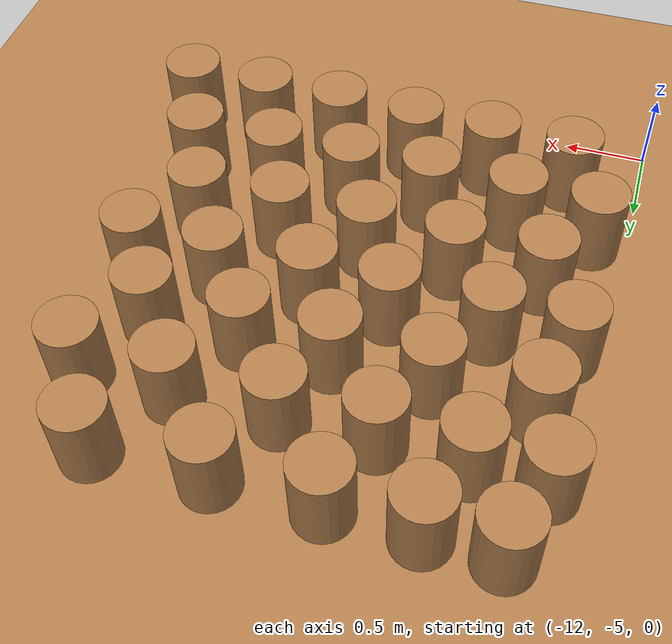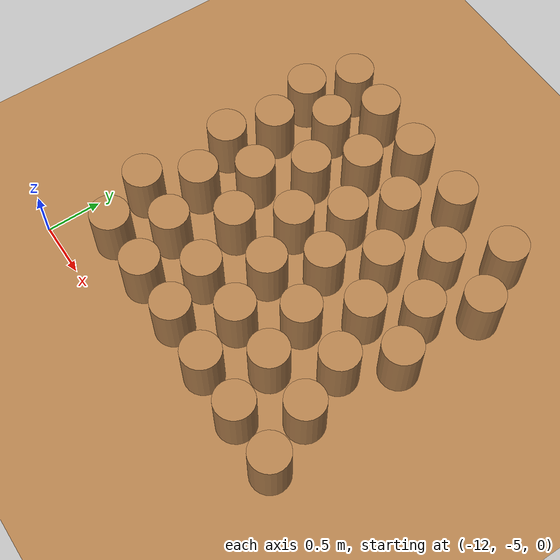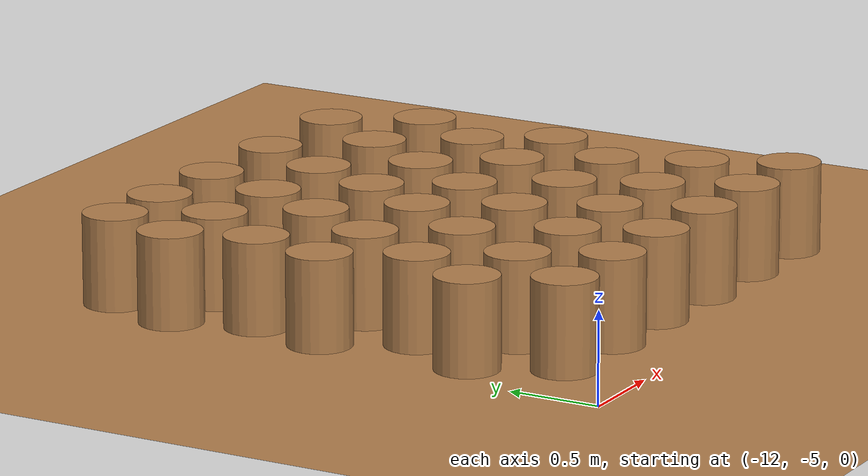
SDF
<sdf version="1.6">
 <world name="default">
  <model name="ground_plane">
   <pose>1.25 -2.75 0 0 -0 0</pose>
   <static>1</static>
   <link name="link">
    <collision name="collision">
     <geometry><plane><normal>0 0 1</normal><size>100 100</size></plane></geometry>
     <surface><friction><ode><mu>100</mu><mu2>50</mu2></ode></friction></surface>
    </collision>
    <visual name="visual">
     <cast_shadows>0</cast_shadows>
     <geometry><plane><normal>0 0 1</normal><size>32 34.75</size></plane></geometry>
     <material>
      <script><uri>file://media/materials/scripts/gazebo.material</uri><name>Gazebo/WoodFloor</name></script>
     </material>
    </visual>
   </link>
  </model>
  <model name="unit_cylinder_11_clone_clone_5_clone_34">
   <pose>-11.7709 -4.12438 0.25 0 0 -1.2e-05</pose>
   <static>1</static>
   <link name="link">
    <inertial>
     <mass>1</mass>
     <inertia><ixx>0.145833</ixx><ixy>0</ixy><ixz>0</ixz><iyy>0.145833</iyy><iyz>0</iyz><izz>0.125</izz></inertia>
    </inertial>
    <collision name="collision">
     <geometry><cylinder><radius>0.175</radius><length>0.5</length></cylinder></geometry>
    </collision>
    <visual name="visual">
     <geometry><cylinder><radius>0.175</radius><length>0.5</length></cylinder></geometry>
     <material>
      <script><name>Gazebo/Wood</name><uri>file://media/materials/scripts/gazebo.material</uri></script>
     </material>
    </visual>
   </link>
  </model>
  <model name="unit_cylinder_11_clone_clone_5_clone_35">
   <pose>-11.2814 -4.14721 0.25 0 0 -1.2e-05</pose>
   <static>1</static>
   <link name="link">
    <inertial>
     <mass>1</mass>
     <inertia><ixx>0.145833</ixx><ixy>0</ixy><ixz>0</ixz><iyy>0.145833</iyy><iyz>0</iyz><izz>0.125</izz></inertia>
    </inertial>
    <collision name="collision">
     <geometry><cylinder><radius>0.175</radius><length>0.5</length></cylinder></geometry>
    </collision>
    <visual name="visual">
     <geometry><cylinder><radius>0.175</radius><length>0.5</length></cylinder></geometry>
     <material>
      <script><name>Gazebo/Wood</name><uri>file://media/materials/scripts/gazebo.material</uri></script>
     </material>
    </visual>
   </link>
  </model>
  <model name="unit_cylinder_11_clone_clone_5_clone_36">
   <pose>-10.7505 -4.15489 0.25 0 0 -1.2e-05</pose>
   <static>1</static>
   <link name="link">
    <inertial>
     <mass>1</mass>
     <inertia><ixx>0.145833</ixx><ixy>0</ixy><ixz>0</ixz><iyy>0.145833</iyy><iyz>0</iyz><izz>0.125</izz></inertia>
    </inertial>
    <collision name="collision">
     <geometry><cylinder><radius>0.175</radius><length>0.5</length></cylinder></geometry>
    </collision>
    <visual name="visual">
     <geometry><cylinder><radius>0.175</radius><length>0.5</length></cylinder></geometry>
     <material>
      <script><name>Gazebo/Wood</name><uri>file://media/materials/scripts/gazebo.material</uri></script>
     </material>
    </visual>
   </link>
  </model>
  <model name="unit_cylinder_11_clone_clone_5_clone_37">
   <pose>-10.2528 -4.14035 0.25 0 0 -1.2e-05</pose>
   <static>1</static>
   <link name="link">
    <inertial>
     <mass>1</mass>
     <inertia><ixx>0.145833</ixx><ixy>0</ixy><ixz>0</ixz><iyy>0.145833</iyy><iyz>0</iyz><izz>0.125</izz></inertia>
    </inertial>
    <collision name="collision">
     <geometry><cylinder><radius>0.175</radius><length>0.5</length></cylinder></geometry>
    </collision>
    <visual name="visual">
     <geometry><cylinder><radius>0.175</radius><length>0.5</length></cylinder></geometry>
     <material>
      <script><name>Gazebo/Wood</name><uri>file://media/materials/scripts/gazebo.material</uri></script>
     </material>
    </visual>
   </link>
  </model>
  <model name="unit_cylinder_11_clone_clone_5_clone_38">
   <pose>-9.75939 -4.13978 0.25 0 0 -1.2e-05</pose>
   <static>1</static>
   <link name="link">
    <inertial>
     <mass>1</mass>
     <inertia><ixx>0.145833</ixx><ixy>0</ixy><ixz>0</ixz><iyy>0.145833</iyy><iyz>0</iyz><izz>0.125</izz></inertia>
    </inertial>
    <collision name="collision">
     <geometry><cylinder><radius>0.175</radius><length>0.5</length></cylinder></geometry>
    </collision>
    <visual name="visual">
     <geometry><cylinder><radius>0.175</radius><length>0.5</length></cylinder></geometry>
     <material>
      <script><name>Gazebo/Wood</name><uri>file://media/materials/scripts/gazebo.material</uri></script>
     </material>
    </visual>
   </link>
  </model>
  <model name="unit_cylinder_11_clone_clone_5_clone_39">
   <pose>-9.2428 -4.14326 0.25 0 0 -1.2e-05</pose>
   <static>1</static>
   <link name="link">
    <inertial>
     <mass>1</mass>
     <inertia><ixx>0.145833</ixx><ixy>0</ixy><ixz>0</ixz><iyy>0.145833</iyy><iyz>0</iyz><izz>0.125</izz></inertia>
    </inertial>
    <collision name="collision">
     <geometry><cylinder><radius>0.175</radius><length>0.5</length></cylinder></geometry>
    </collision>
    <visual name="visual">
     <geometry><cylinder><radius>0.175</radius><length>0.5</length></cylinder></geometry>
     <material>
      <script><name>Gazebo/Wood</name><uri>file://media/materials/scripts/gazebo.material</uri></script>
     </material>
    </visual>
   </link>
  </model>
  <model name="unit_cylinder_11_clone_clone_5_clone_43">
   <pose>-11.5396 -3.70127 0.25 0 0 -1.2e-05</pose>
   <static>1</static>
   <link name="link">
    <inertial>
     <mass>1</mass>
     <inertia><ixx>0.145833</ixx><ixy>0</ixy><ixz>0</ixz><iyy>0.145833</iyy><iyz>0</iyz><izz>0.125</izz></inertia>
    </inertial>
    <collision name="collision">
     <geometry><cylinder><radius>0.175</radius><length>0.5</length></cylinder></geometry>
    </collision>
    <visual name="visual">
     <geometry><cylinder><radius>0.175</radius><length>0.5</length></cylinder></geometry>
     <material>
      <script><name>Gazebo/Wood</name><uri>file://media/materials/scripts/gazebo.material</uri></script>
     </material>
    </visual>
   </link>
  </model>
  <model name="unit_cylinder_11_clone_clone_5_clone_44">
   <pose>-11.0092 -3.67085 0.25 0 0 -1.2e-05</pose>
   <static>1</static>
   <link name="link">
    <inertial>
     <mass>1</mass>
     <inertia><ixx>0.145833</ixx><ixy>0</ixy><ixz>0</ixz><iyy>0.145833</iyy><iyz>0</iyz><izz>0.125</izz></inertia>
    </inertial>
    <collision name="collision">
     <geometry><cylinder><radius>0.175</radius><length>0.5</length></cylinder></geometry>
    </collision>
    <visual name="visual">
     <geometry><cylinder><radius>0.175</radius><length>0.5</length></cylinder></geometry>
     <material>
      <script><name>Gazebo/Wood</name><uri>file://media/materials/scripts/gazebo.material</uri></script>
     </material>
    </visual>
   </link>
  </model>
  <model name="unit_cylinder_11_clone_clone_5_clone_45">
   <pose>-10.4774 -3.69003 0.25 0 0 -1.2e-05</pose>
   <static>1</static>
   <link name="link">
    <inertial>
     <mass>1</mass>
     <inertia><ixx>0.145833</ixx><ixy>0</ixy><ixz>0</ixz><iyy>0.145833</iyy><iyz>0</iyz><izz>0.125</izz></inertia>
    </inertial>
    <collision name="collision">
     <geometry><cylinder><radius>0.175</radius><length>0.5</length></cylinder></geometry>
    </collision>
    <visual name="visual">
     <geometry><cylinder><radius>0.175</radius><length>0.5</length></cylinder></geometry>
     <material>
      <script><name>Gazebo/Wood</name><uri>file://media/materials/scripts/gazebo.material</uri></script>
     </material>
    </visual>
   </link>
  </model>
  <model name="unit_cylinder_11_clone_clone_5_clone_46">
   <pose>-9.94585 -3.70421 0.25 0 0 -1.2e-05</pose>
   <static>1</static>
   <link name="link">
    <inertial>
     <mass>1</mass>
     <inertia><ixx>0.145833</ixx><ixy>0</ixy><ixz>0</ixz><iyy>0.145833</iyy><iyz>0</iyz><izz>0.125</izz></inertia>
    </inertial>
    <collision name="collision">
     <geometry><cylinder><radius>0.175</radius><length>0.5</length></cylinder></geometry>
    </collision>
    <visual name="visual">
     <geometry><cylinder><radius>0.175</radius><length>0.5</length></cylinder></geometry>
     <material>
      <script><name>Gazebo/Wood</name><uri>file://media/materials/scripts/gazebo.material</uri></script>
     </material>
    </visual>
   </link>
  </model>
  <model name="unit_cylinder_11_clone_clone_5_clone_47">
   <pose>-9.4301 -3.68907 0.25 0 0 -1.2e-05</pose>
   <static>1</static>
   <link name="link">
    <inertial>
     <mass>1</mass>
     <inertia><ixx>0.145833</ixx><ixy>0</ixy><ixz>0</ixz><iyy>0.145833</iyy><iyz>0</iyz><izz>0.125</izz></inertia>
    </inertial>
    <collision name="collision">
     <geometry><cylinder><radius>0.175</radius><length>0.5</length></cylinder></geometry>
    </collision>
    <visual name="visual">
     <geometry><cylinder><radius>0.175</radius><length>0.5</length></cylinder></geometry>
     <material>
      <script><name>Gazebo/Wood</name><uri>file://media/materials/scripts/gazebo.material</uri></script>
     </material>
    </visual>
   </link>
  </model>
  <model name="unit_cylinder_11_clone_clone_5_clone_52">
   <pose>-11.7783 -3.26265 0.25 0 0 -1.2e-05</pose>
   <static>1</static>
   <link name="link">
    <inertial>
     <mass>1</mass>
     <inertia><ixx>0.145833</ixx><ixy>0</ixy><ixz>0</ixz><iyy>0.145833</iyy><iyz>0</iyz><izz>0.125</izz></inertia>
    </inertial>
    <collision name="collision">
     <geometry><cylinder><radius>0.175</radius><length>0.5</length></cylinder></geometry>
    </collision>
    <visual name="visual">
     <geometry><cylinder><radius>0.175</radius><length>0.5</length></cylinder></geometry>
     <material>
      <script><name>Gazebo/Wood</name><uri>file://media/materials/scripts/gazebo.material</uri></script>
     </material>
    </visual>
   </link>
  </model>
  <model name="unit_cylinder_11_clone_clone_5_clone_53">
   <pose>-11.3129 -3.26441 0.25 0 0 -1.2e-05</pose>
   <static>1</static>
   <link name="link">
    <inertial>
     <mass>1</mass>
     <inertia><ixx>0.145833</ixx><ixy>0</ixy><ixz>0</ixz><iyy>0.145833</iyy><iyz>0</iyz><izz>0.125</izz></inertia>
    </inertial>
    <collision name="collision">
     <geometry><cylinder><radius>0.175</radius><length>0.5</length></cylinder></geometry>
    </collision>
    <visual name="visual">
     <geometry><cylinder><radius>0.175</radius><length>0.5</length></cylinder></geometry>
     <material>
      <script><name>Gazebo/Wood</name><uri>file://media/materials/scripts/gazebo.material</uri></script>
     </material>
    </visual>
   </link>
  </model>
  <model name="unit_cylinder_11_clone_clone_5_clone_54">
   <pose>-10.7369 -3.24626 0.25 0 0 -1.2e-05</pose>
   <static>1</static>
   <link name="link">
    <inertial>
     <mass>1</mass>
     <inertia><ixx>0.145833</ixx><ixy>0</ixy><ixz>0</ixz><iyy>0.145833</iyy><iyz>0</iyz><izz>0.125</izz></inertia>
    </inertial>
    <collision name="collision">
     <geometry><cylinder><radius>0.175</radius><length>0.5</length></cylinder></geometry>
    </collision>
    <visual name="visual">
     <geometry><cylinder><radius>0.175</radius><length>0.5</length></cylinder></geometry>
     <material>
      <script><name>Gazebo/Wood</name><uri>file://media/materials/scripts/gazebo.material</uri></script>
     </material>
    </visual>
   </link>
  </model>
  <model name="unit_cylinder_11_clone_clone_5_clone_55">
   <pose>-10.2541 -3.26472 0.25 0 0 -1.2e-05</pose>
   <static>1</static>
   <link name="link">
    <inertial>
     <mass>1</mass>
     <inertia><ixx>0.145833</ixx><ixy>0</ixy><ixz>0</ixz><iyy>0.145833</iyy><iyz>0</iyz><izz>0.125</izz></inertia>
    </inertial>
    <collision name="collision">
     <geometry><cylinder><radius>0.175</radius><length>0.5</length></cylinder></geometry>
    </collision>
    <visual name="visual">
     <geometry><cylinder><radius>0.175</radius><length>0.5</length></cylinder></geometry>
     <material>
      <script><name>Gazebo/Wood</name><uri>file://media/materials/scripts/gazebo.material</uri></script>
     </material>
    </visual>
   </link>
  </model>
  <model name="unit_cylinder_11_clone_clone_5_clone_56">
   <pose>-9.69854 -3.24995 0.25 0 0 -1.2e-05</pose>
   <static>1</static>
   <link name="link">
    <inertial>
     <mass>1</mass>
     <inertia><ixx>0.145833</ixx><ixy>0</ixy><ixz>0</ixz><iyy>0.145833</iyy><iyz>0</iyz><izz>0.125</izz></inertia>
    </inertial>
    <collision name="collision">
     <geometry><cylinder><radius>0.175</radius><length>0.5</length></cylinder></geometry>
    </collision>
    <visual name="visual">
     <geometry><cylinder><radius>0.175</radius><length>0.5</length></cylinder></geometry>
     <material>
      <script><name>Gazebo/Wood</name><uri>file://media/materials/scripts/gazebo.material</uri></script>
     </material>
    </visual>
   </link>
  </model>
  <model name="unit_cylinder_11_clone_clone_5_clone_57">
   <pose>-9.19553 -3.25007 0.25 0 0 -1.2e-05</pose>
   <static>1</static>
   <link name="link">
    <inertial>
     <mass>1</mass>
     <inertia><ixx>0.145833</ixx><ixy>0</ixy><ixz>0</ixz><iyy>0.145833</iyy><iyz>0</iyz><izz>0.125</izz></inertia>
    </inertial>
    <collision name="collision">
     <geometry><cylinder><radius>0.175</radius><length>0.5</length></cylinder></geometry>
    </collision>
    <visual name="visual">
     <geometry><cylinder><radius>0.175</radius><length>0.5</length></cylinder></geometry>
     <material>
      <script><name>Gazebo/Wood</name><uri>file://media/materials/scripts/gazebo.material</uri></script>
     </material>
    </visual>
   </link>
  </model>
  <model name="unit_cylinder_11_clone_clone_5_clone_52_clone_0">
   <pose>-11.0847 -2.83316 0.25 0 0 -1.2e-05</pose>
   <static>1</static>
   <link name="link">
    <inertial>
     <mass>1</mass>
     <inertia><ixx>0.145833</ixx><ixy>0</ixy><ixz>0</ixz><iyy>0.145833</iyy><iyz>0</iyz><izz>0.125</izz></inertia>
    </inertial>
    <collision name="collision">
     <geometry><cylinder><radius>0.175</radius><length>0.5</length></cylinder></geometry>
    </collision>
    <visual name="visual">
     <geometry><cylinder><radius>0.175</radius><length>0.5</length></cylinder></geometry>
     <material>
      <script><name>Gazebo/Wood</name><uri>file://media/materials/scripts/gazebo.material</uri></script>
     </material>
    </visual>
   </link>
  </model>
  <model name="unit_cylinder_11_clone_clone_5_clone_52_clone_1">
   <pose>-10.5181 -2.843 0.25 0 0 -1.2e-05</pose>
   <static>1</static>
   <link name="link">
    <inertial>
     <mass>1</mass>
     <inertia><ixx>0.145833</ixx><ixy>0</ixy><ixz>0</ixz><iyy>0.145833</iyy><iyz>0</iyz><izz>0.125</izz></inertia>
    </inertial>
    <collision name="collision">
     <geometry><cylinder><radius>0.175</radius><length>0.5</length></cylinder></geometry>
    </collision>
    <visual name="visual">
     <geometry><cylinder><radius>0.175</radius><length>0.5</length></cylinder></geometry>
     <material>
      <script><name>Gazebo/Wood</name><uri>file://media/materials/scripts/gazebo.material</uri></script>
     </material>
    </visual>
   </link>
  </model>
  <model name="unit_cylinder_11_clone_clone_5_clone_52_clone_2">
   <pose>-9.99998 -2.85033 0.25 0 0 -1.2e-05</pose>
   <static>1</static>
   <link name="link">
    <inertial>
     <mass>1</mass>
     <inertia><ixx>0.145833</ixx><ixy>0</ixy><ixz>0</ixz><iyy>0.145833</iyy><iyz>0</iyz><izz>0.125</izz></inertia>
    </inertial>
    <collision name="collision">
     <geometry><cylinder><radius>0.175</radius><length>0.5</length></cylinder></geometry>
    </collision>
    <visual name="visual">
     <geometry><cylinder><radius>0.175</radius><length>0.5</length></cylinder></geometry>
     <material>
      <script><name>Gazebo/Wood</name><uri>file://media/materials/scripts/gazebo.material</uri></script>
     </material>
    </visual>
   </link>
  </model>
  <model name="unit_cylinder_11_clone_clone_5_clone_52_clone_3">
   <pose>-9.43327 -2.85533 0.25 0 0 -1.2e-05</pose>
   <static>1</static>
   <link name="link">
    <inertial>
     <mass>1</mass>
     <inertia><ixx>0.145833</ixx><ixy>0</ixy><ixz>0</ixz><iyy>0.145833</iyy><iyz>0</iyz><izz>0.125</izz></inertia>
    </inertial>
    <collision name="collision">
     <geometry><cylinder><radius>0.175</radius><length>0.5</length></cylinder></geometry>
    </collision>
    <visual name="visual">
     <geometry><cylinder><radius>0.175</radius><length>0.5</length></cylinder></geometry>
     <material>
      <script><name>Gazebo/Wood</name><uri>file://media/materials/scripts/gazebo.material</uri></script>
     </material>
    </visual>
   </link>
  </model>
  <model name="unit_cylinder_11_clone_clone_5_clone_52_clone">
   <pose>-11.6749 -2.82252 0.25 0 0 -1.2e-05</pose>
   <static>1</static>
   <link name="link">
    <inertial>
     <mass>1</mass>
     <inertia><ixx>0.145833</ixx><ixy>0</ixy><ixz>0</ixz><iyy>0.145833</iyy><iyz>0</iyz><izz>0.125</izz></inertia>
    </inertial>
    <collision name="collision">
     <geometry><cylinder><radius>0.175</radius><length>0.5</length></cylinder></geometry>
    </collision>
    <visual name="visual">
     <geometry><cylinder><radius>0.175</radius><length>0.5</length></cylinder></geometry>
     <material>
      <script><name>Gazebo/Wood</name><uri>file://media/materials/scripts/gazebo.material</uri></script>
     </material>
    </visual>
   </link>
  </model>
  <model name="unit_cylinder_11_clone_clone_5_clone_52_clone_7">
   <pose>-11.8123 -2.38408 0.25 0 0 -1.2e-05</pose>
   <static>1</static>
   <link name="link">
    <inertial>
     <mass>1</mass>
     <inertia><ixx>0.145833</ixx><ixy>0</ixy><ixz>0</ixz><iyy>0.145833</iyy><iyz>0</iyz><izz>0.125</izz></inertia>
    </inertial>
    <collision name="collision">
     <geometry><cylinder><radius>0.175</radius><length>0.5</length></cylinder></geometry>
    </collision>
    <visual name="visual">
     <geometry><cylinder><radius>0.175</radius><length>0.5</length></cylinder></geometry>
     <material>
      <script><name>Gazebo/Wood</name><uri>file://media/materials/scripts/gazebo.material</uri></script>
     </material>
    </visual>
   </link>
  </model>
  <model name="unit_cylinder_11_clone_clone_5_clone_52_clone_8">
   <pose>-11.3965 -2.4007 0.25 0 0 -1.2e-05</pose>
   <static>1</static>
   <link name="link">
    <inertial>
     <mass>1</mass>
     <inertia><ixx>0.145833</ixx><ixy>0</ixy><ixz>0</ixz><iyy>0.145833</iyy><iyz>0</iyz><izz>0.125</izz></inertia>
    </inertial>
    <collision name="collision">
     <geometry><cylinder><radius>0.175</radius><length>0.5</length></cylinder></geometry>
    </collision>
    <visual name="visual">
     <geometry><cylinder><radius>0.175</radius><length>0.5</length></cylinder></geometry>
     <material>
      <script><name>Gazebo/Wood</name><uri>file://media/materials/scripts/gazebo.material</uri></script>
     </material>
    </visual>
   </link>
  </model>
  <model name="unit_cylinder_11_clone_clone_5_clone_52_clone_9">
   <pose>-10.8887 -2.422 0.25 0 0 -1.2e-05</pose>
   <static>1</static>
   <link name="link">
    <inertial>
     <mass>1</mass>
     <inertia><ixx>0.145833</ixx><ixy>0</ixy><ixz>0</ixz><iyy>0.145833</iyy><iyz>0</iyz><izz>0.125</izz></inertia>
    </inertial>
    <collision name="collision">
     <geometry><cylinder><radius>0.175</radius><length>0.5</length></cylinder></geometry>
    </collision>
    <visual name="visual">
     <geometry><cylinder><radius>0.175</radius><length>0.5</length></cylinder></geometry>
     <material>
      <script><name>Gazebo/Wood</name><uri>file://media/materials/scripts/gazebo.material</uri></script>
     </material>
    </visual>
   </link>
  </model>
  <model name="unit_cylinder_11_clone_clone_5_clone_52_clone_10">
   <pose>-10.3504 -2.41583 0.25 0 0 -1.2e-05</pose>
   <static>1</static>
   <link name="link">
    <inertial>
     <mass>1</mass>
     <inertia><ixx>0.145833</ixx><ixy>0</ixy><ixz>0</ixz><iyy>0.145833</iyy><iyz>0</iyz><izz>0.125</izz></inertia>
    </inertial>
    <collision name="collision">
     <geometry><cylinder><radius>0.175</radius><length>0.5</length></cylinder></geometry>
    </collision>
    <visual name="visual">
     <geometry><cylinder><radius>0.175</radius><length>0.5</length></cylinder></geometry>
     <material>
      <script><name>Gazebo/Wood</name><uri>file://media/materials/scripts/gazebo.material</uri></script>
     </material>
    </visual>
   </link>
  </model>
  <model name="unit_cylinder_11_clone_clone_5_clone_52_clone_11">
   <pose>-9.74449 -2.41317 0.25 0 0 -1.2e-05</pose>
   <static>1</static>
   <link name="link">
    <inertial>
     <mass>1</mass>
     <inertia><ixx>0.145833</ixx><ixy>0</ixy><ixz>0</ixz><iyy>0.145833</iyy><iyz>0</iyz><izz>0.125</izz></inertia>
    </inertial>
    <collision name="collision">
     <geometry><cylinder><radius>0.175</radius><length>0.5</length></cylinder></geometry>
    </collision>
    <visual name="visual">
     <geometry><cylinder><radius>0.175</radius><length>0.5</length></cylinder></geometry>
     <material>
      <script><name>Gazebo/Wood</name><uri>file://media/materials/scripts/gazebo.material</uri></script>
     </material>
    </visual>
   </link>
  </model>
  <model name="unit_cylinder_11_clone_clone_5_clone_52_clone_12">
   <pose>-9.19714 -2.42198 0.25 0 0 -1.2e-05</pose>
   <static>1</static>
   <link name="link">
    <inertial>
     <mass>1</mass>
     <inertia><ixx>0.145833</ixx><ixy>0</ixy><ixz>0</ixz><iyy>0.145833</iyy><iyz>0</iyz><izz>0.125</izz></inertia>
    </inertial>
    <collision name="collision">
     <geometry><cylinder><radius>0.175</radius><length>0.5</length></cylinder></geometry>
    </collision>
    <visual name="visual">
     <geometry><cylinder><radius>0.175</radius><length>0.5</length></cylinder></geometry>
     <material>
      <script><name>Gazebo/Wood</name><uri>file://media/materials/scripts/gazebo.material</uri></script>
     </material>
    </visual>
   </link>
  </model>
  <model name="unit_cylinder_11_clone_clone_5_clone_52_clone_16">
   <pose>-11.6693 -1.95521 0.25 0 0 -1.2e-05</pose>
   <static>1</static>
   <link name="link">
    <inertial>
     <mass>1</mass>
     <inertia><ixx>0.145833</ixx><ixy>0</ixy><ixz>0</ixz><iyy>0.145833</iyy><iyz>0</iyz><izz>0.125</izz></inertia>
    </inertial>
    <collision name="collision">
     <geometry><cylinder><radius>0.175</radius><length>0.5</length></cylinder></geometry>
    </collision>
    <visual name="visual">
     <geometry><cylinder><radius>0.175</radius><length>0.5</length></cylinder></geometry>
     <material>
      <script><name>Gazebo/Wood</name><uri>file://media/materials/scripts/gazebo.material</uri></script>
     </material>
    </visual>
   </link>
  </model>
  <model name="unit_cylinder_11_clone_clone_5_clone_52_clone_17">
   <pose>-11.2481 -1.96723 0.25 0 0 -1.2e-05</pose>
   <static>1</static>
   <link name="link">
    <inertial>
     <mass>1</mass>
     <inertia><ixx>0.145833</ixx><ixy>0</ixy><ixz>0</ixz><iyy>0.145833</iyy><iyz>0</iyz><izz>0.125</izz></inertia>
    </inertial>
    <collision name="collision">
     <geometry><cylinder><radius>0.175</radius><length>0.5</length></cylinder></geometry>
    </collision>
    <visual name="visual">
     <geometry><cylinder><radius>0.175</radius><length>0.5</length></cylinder></geometry>
     <material>
      <script><name>Gazebo/Wood</name><uri>file://media/materials/scripts/gazebo.material</uri></script>
     </material>
    </visual>
   </link>
  </model>
  <model name="unit_cylinder_11_clone_clone_5_clone_52_clone_18">
   <pose>-10.7347 -1.97429 0.25 0 0 -1.2e-05</pose>
   <static>1</static>
   <link name="link">
    <inertial>
     <mass>1</mass>
     <inertia><ixx>0.145833</ixx><ixy>0</ixy><ixz>0</ixz><iyy>0.145833</iyy><iyz>0</iyz><izz>0.125</izz></inertia>
    </inertial>
    <collision name="collision">
     <geometry><cylinder><radius>0.175</radius><length>0.5</length></cylinder></geometry>
    </collision>
    <visual name="visual">
     <geometry><cylinder><radius>0.175</radius><length>0.5</length></cylinder></geometry>
     <material>
      <script><name>Gazebo/Wood</name><uri>file://media/materials/scripts/gazebo.material</uri></script>
     </material>
    </visual>
   </link>
  </model>
  <model name="unit_cylinder_11_clone_clone_5_clone_52_clone_19">
   <pose>-10.1242 -1.97671 0.25 0 0 -1.2e-05</pose>
   <static>1</static>
   <link name="link">
    <inertial>
     <mass>1</mass>
     <inertia><ixx>0.145833</ixx><ixy>0</ixy><ixz>0</ixz><iyy>0.145833</iyy><iyz>0</iyz><izz>0.125</izz></inertia>
    </inertial>
    <collision name="collision">
     <geometry><cylinder><radius>0.175</radius><length>0.5</length></cylinder></geometry>
    </collision>
    <visual name="visual">
     <geometry><cylinder><radius>0.175</radius><length>0.5</length></cylinder></geometry>
     <material>
      <script><name>Gazebo/Wood</name><uri>file://media/materials/scripts/gazebo.material</uri></script>
     </material>
    </visual>
   </link>
  </model>
  <model name="unit_cylinder_11_clone_clone_5_clone_52_clone_20">
   <pose>-9.45491 -1.96754 0.25 0 0 -1.2e-05</pose>
   <static>1</static>
   <link name="link">
    <inertial>
     <mass>1</mass>
     <inertia><ixx>0.145833</ixx><ixy>0</ixy><ixz>0</ixz><iyy>0.145833</iyy><iyz>0</iyz><izz>0.125</izz></inertia>
    </inertial>
    <collision name="collision">
     <geometry><cylinder><radius>0.175</radius><length>0.5</length></cylinder></geometry>
    </collision>
    <visual name="visual">
     <geometry><cylinder><radius>0.175</radius><length>0.5</length></cylinder></geometry>
     <material>
      <script><name>Gazebo/Wood</name><uri>file://media/materials/scripts/gazebo.material</uri></script>
     </material>
    </visual>
   </link>
  </model>
  <model name="unit_cylinder_11_clone_clone_5_clone_32_clone_0">
   <pose>-9.04608 -4.60196 0.25 0 0 -1.2e-05</pose>
   <static>1</static>
   <link name="link">
    <inertial>
     <mass>1</mass>
     <inertia><ixx>0.145833</ixx><ixy>0</ixy><ixz>0</ixz><iyy>0.145833</iyy><iyz>0</iyz><izz>0.125</izz></inertia>
    </inertial>
    <collision name="collision">
     <geometry><cylinder><radius>0.175</radius><length>0.5</length></cylinder></geometry>
    </collision>
    <visual name="visual">
     <geometry><cylinder><radius>0.175</radius><length>0.5</length></cylinder></geometry>
     <material>
      <script><name>Gazebo/Wood</name><uri>file://media/materials/scripts/gazebo.material</uri></script>
     </material>
    </visual>
   </link>
  </model>
  <model name="unit_cylinder_11_clone_clone_5_clone_32_clone_1">
   <pose>-9.54464 -4.5978 0.25 0 0 -1.2e-05</pose>
   <static>1</static>
   <link name="link">
    <inertial>
     <mass>1</mass>
     <inertia><ixx>0.145833</ixx><ixy>0</ixy><ixz>0</ixz><iyy>0.145833</iyy><iyz>0</iyz><izz>0.125</izz></inertia>
    </inertial>
    <collision name="collision">
     <geometry><cylinder><radius>0.175</radius><length>0.5</length></cylinder></geometry>
    </collision>
    <visual name="visual">
     <geometry><cylinder><radius>0.175</radius><length>0.5</length></cylinder></geometry>
     <material>
      <script><name>Gazebo/Wood</name><uri>file://media/materials/scripts/gazebo.material</uri></script>
     </material>
    </visual>
   </link>
  </model>
  <model name="unit_cylinder_11_clone_clone_5_clone_32_clone_2">
   <pose>-10.0434 -4.5937 0.25 0 0 -1.2e-05</pose>
   <static>1</static>
   <link name="link">
    <inertial>
     <mass>1</mass>
     <inertia><ixx>0.145833</ixx><ixy>0</ixy><ixz>0</ixz><iyy>0.145833</iyy><iyz>0</iyz><izz>0.125</izz></inertia>
    </inertial>
    <collision name="collision">
     <geometry><cylinder><radius>0.175</radius><length>0.5</length></cylinder></geometry>
    </collision>
    <visual name="visual">
     <geometry><cylinder><radius>0.175</radius><length>0.5</length></cylinder></geometry>
     <material>
      <script><name>Gazebo/Wood</name><uri>file://media/materials/scripts/gazebo.material</uri></script>
     </material>
    </visual>
   </link>
  </model>
  <model name="unit_cylinder_11_clone_clone_5_clone_32_clone_3">
   <pose>-10.5493 -4.56984 0.25 0 0 -1.2e-05</pose>
   <static>1</static>
   <link name="link">
    <inertial>
     <mass>1</mass>
     <inertia><ixx>0.145833</ixx><ixy>0</ixy><ixz>0</ixz><iyy>0.145833</iyy><iyz>0</iyz><izz>0.125</izz></inertia>
    </inertial>
    <collision name="collision">
     <geometry><cylinder><radius>0.175</radius><length>0.5</length></cylinder></geometry>
    </collision>
    <visual name="visual">
     <geometry><cylinder><radius>0.175</radius><length>0.5</length></cylinder></geometry>
     <material>
      <script><name>Gazebo/Wood</name><uri>file://media/materials/scripts/gazebo.material</uri></script>
     </material>
    </visual>
   </link>
  </model>
  <model name="unit_cylinder_11_clone_clone_5_clone_32_clone_4">
   <pose>-11.0409 -4.5722 0.25 0 0 -1.2e-05</pose>
   <static>1</static>
   <link name="link">
    <inertial>
     <mass>1</mass>
     <inertia><ixx>0.145833</ixx><ixy>0</ixy><ixz>0</ixz><iyy>0.145833</iyy><iyz>0</iyz><izz>0.125</izz></inertia>
    </inertial>
    <collision name="collision">
     <geometry><cylinder><radius>0.175</radius><length>0.5</length></cylinder></geometry>
    </collision>
    <visual name="visual">
     <geometry><cylinder><radius>0.175</radius><length>0.5</length></cylinder></geometry>
     <material>
      <script><name>Gazebo/Wood</name><uri>file://media/materials/scripts/gazebo.material</uri></script>
     </material>
    </visual>
   </link>
  </model>
  <model name="unit_cylinder_11_clone_clone_5_clone_32_clone_5">
   <pose>-11.5528 -4.56846 0.25 0 0 -1.2e-05</pose>
   <static>1</static>
   <link name="link">
    <inertial>
     <mass>1</mass>
     <inertia><ixx>0.145833</ixx><ixy>0</ixy><ixz>0</ixz><iyy>0.145833</iyy><iyz>0</iyz><izz>0.125</izz></inertia>
    </inertial>
    <collision name="collision">
     <geometry><cylinder><radius>0.175</radius><length>0.5</length></cylinder></geometry>
    </collision>
    <visual name="visual">
     <geometry><cylinder><radius>0.175</radius><length>0.5</length></cylinder></geometry>
     <material>
      <script><name>Gazebo/Wood</name><uri>file://media/materials/scripts/gazebo.material</uri></script>
     </material>
    </visual>
   </link>
  </model>
 </world>
</sdf>
